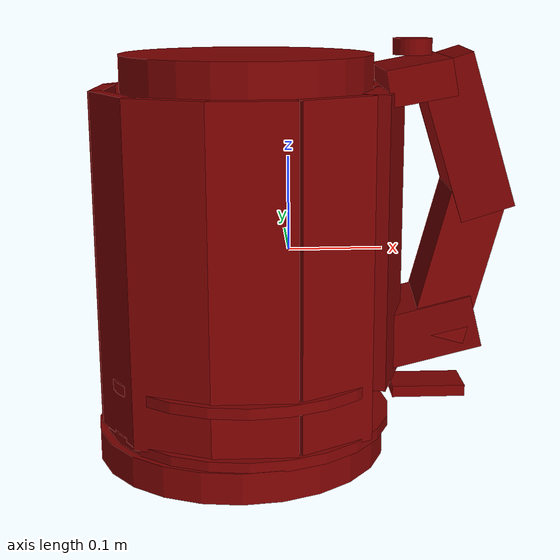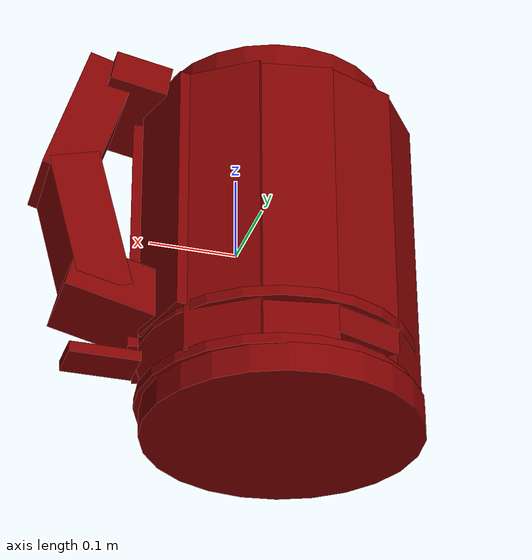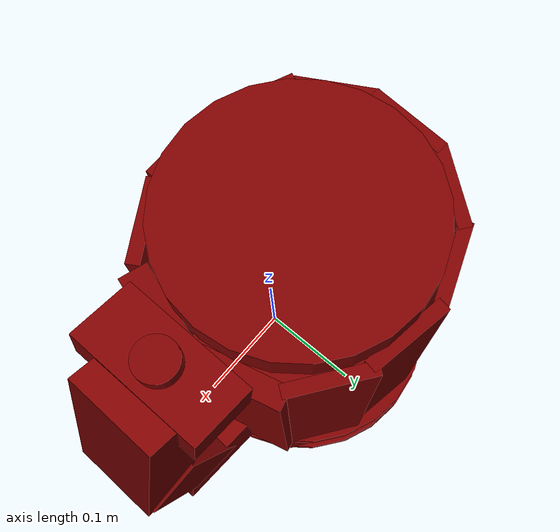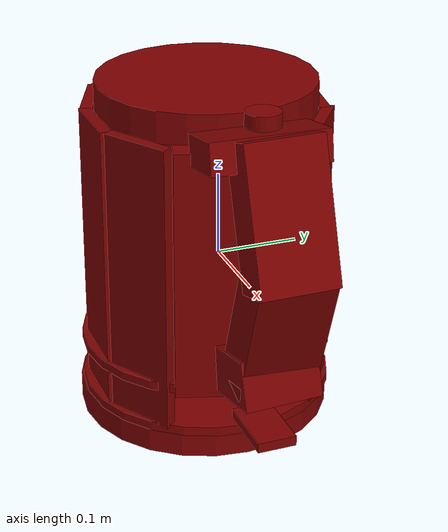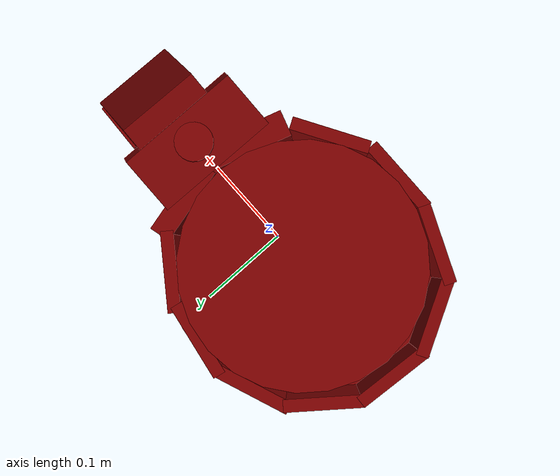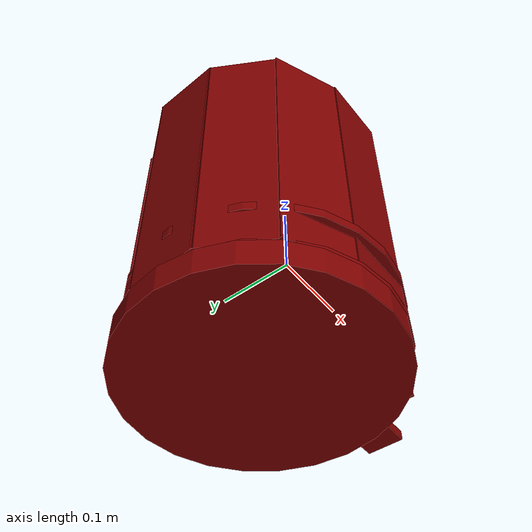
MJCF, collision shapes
<?xml version='1.0' encoding='UTF-8'?>
<mujoco model="model">
  <compiler angle="radian"/>
  <asset>
    <mesh file="visuals/Body001.obj" name="Body001_vis"/>
    <mesh file="visuals/Button001.obj" name="Button001_vis"/>
    <mesh file="visuals/Handle001.obj" name="Handle001_vis"/>
    <mesh file="visuals/Lever001.obj" name="Lever001_vis"/>
    <mesh file="visuals/Lid001.obj" name="Lid001_vis"/>
    <texture file="visuals/T_BC001.png" name="Body001_material" type="2d"/>
    <material name="Body001_material" rgba="1 1 1 1.0" texture="Body001_material" shininess="0.5" specular="0.3103448502657381"/>
    <texture file="visuals/T_BC001.png" name="Handle001_material" type="2d"/>
    <material name="Handle001_material" rgba="1 1 1 1.0" texture="Handle001_material" shininess="0.5" specular="0.3103448502657381"/>
    <texture file="visuals/T_BC001.png" name="Button001_material" type="2d"/>
    <material name="Button001_material" rgba="1 1 1 1.0" texture="Button001_material" shininess="0.5" specular="0.3103448502657381"/>
    <texture file="visuals/T_BC001.png" name="Lever001_material" type="2d"/>
    <material name="Lever001_material" rgba="1 1 1 1.0" texture="Lever001_material" shininess="0.5" specular="0.3103448502657381"/>
    <texture file="visuals/T_BC001.png" name="Lid001_material" type="2d"/>
    <material name="Lid001_material" rgba="1 1 1 1.0" texture="Lid001_material" shininess="0.5" specular="0.3103448502657381"/>
  </asset>
  <default>
    <default class="visual">
      <geom conaffinity="0" contype="0" group="1" type="mesh"/>
    </default>
    <default class="collision">
      <geom group="0" rgba="0.5 0 0 0.5"/>
    </default>
    <default class="spawn">
      <geom group="0" rgba="1 1 1 0.5" contype="0" conaffinity="0"/>
      <site group="0" rgba="1 1 1 0.5"/>
    </default>
    <default class="region">
      <geom group="1" conaffinity="0" contype="0" rgba="0 1 0 0"/>
    </default>
  </default>
  <worldbody>
    <body>
      <body name="object">
        <geom mesh="Body001_vis" type="mesh" solimp="0.998 0.998 0.001" solref="0.001 1" density="100" friction="0.95 0.3 0.1" class="visual" material="Body001_material"/>
        <geom class="collision" type="cylinder" pos="-0.052561 0.000768 -0.204823" size="0.15676099061965942 0.016660800203680992" quat="0.7071068286895752 0.0 -0.0 -0.7071067690849304"/>
        <body name="Handle001">
          <joint axis="0.0 0.0 1.0" pos="0.000510 0.000000 0.000000" limited="true" name="Handle001_joint" range="0.0 0.1" type="slide" damping="1" frictionloss="1" armature=".01" stiffness="0.05"/>
          <geom mesh="Handle001_vis" type="mesh" solimp="0.998 0.998 0.001" solref="0.001 1" density="100" friction="0.95 0.3 0.1" class="visual" material="Handle001_material"/>
          <geom class="collision" type="box" pos="-0.039345 -0.136828 -0.004407" size="0.04330691695213318 0.006925545632839203 0.17692290246486664" quat="1.0 0.0 0.0 0.0"/>
          <geom class="collision" type="box" pos="-0.119406 -0.119470 -0.004407" size="0.006898260675370693 0.04330328479409218 0.17692464590072632" quat="0.5532516241073608 0.0 -0.0 -0.833014190196991"/>
          <geom class="collision" type="box" pos="-0.175124 -0.067450 -0.004407" size="0.006898260675370693 0.04330328851938248 0.17692464590072632" quat="0.25606197118759155 0.0 -0.0 -0.9666603803634644"/>
          <geom class="collision" type="box" pos="-0.192539 0.007254 -0.004407" size="0.006898260675370693 0.04330328851938248 0.17692464590072632" quat="0.029425621032714844 0.0 0.0 0.9995669722557068"/>
          <geom class="collision" type="box" pos="-0.165306 0.079942 -0.004407" size="0.006898260675370693 0.04330328479409218 0.17692464590072632" quat="0.3242883086204529 0.0 0.0 0.9459583163261414"/>
          <geom class="collision" type="box" pos="-0.104450 0.126317 0.004078" size="0.006898260675370693 0.04330328851938248 0.16843943297863007" quat="0.5682376027107239 0.0 0.0 0.8228645324707031"/>
          <geom class="collision" type="box" pos="-0.027552 0.134899 -0.004407" size="0.006898260209709406 0.04330328851938248 0.17692464590072632" quat="0.7656922936439514 0.0 0.0 0.6432070136070251"/>
          <geom class="collision" type="box" pos="0.040961 -0.111843 -0.004407" size="0.006898260675370693 0.04330328479409218 0.17692464590072632" quat="0.8710189461708069 0.0 -0.0 -0.4912493824958801"/>
          <geom class="collision" type="box" pos="0.094592 -0.044185 0.020790" size="0.014288175851106644 0.04330328851938248 0.15172792971134186" quat="0.988697350025177 0.0 -0.0 -0.1499251127243042"/>
          <geom class="collision" type="box" pos="0.092162 0.049505 0.023200" size="0.011540213599801064 0.04330328851938248 0.14931738376617432" quat="0.9926108717918396 0.0 0.0 0.12134098261594772"/>
          <geom class="collision" type="cylinder" pos="-0.045111 0.000729 -0.183416" size="0.15548908710479736 0.005814768839627504" quat="0.7071068286895752 0.0 -0.0 -0.7071067690849304"/>
          <geom class="collision" type="box" pos="0.129323 -0.002326 0.181519" size="0.018407177180051804 0.03315243497490883 0.06951679289340973" quat="0.4461967647075653 -0.457174688577652 -0.5419254899024963 -0.5460920333862305"/>
          <geom class="collision" type="box" pos="0.181912 0.002870 0.124188" size="0.028995146974921227 0.045845359563827515 0.08278486877679825" quat="0.9882217645645142 0.008173669688403606 -0.15205948054790497 -0.015128699131309986"/>
          <geom class="collision" type="box" pos="0.178156 0.003409 -0.009616" size="0.028995145112276077 0.045845359563827515 0.08278487622737885" quat="0.9907916188240051 -0.020459191873669624 0.13274115324020386 -0.01712077483534813"/>
          <geom class="collision" type="box" pos="0.143922 0.000628 -0.081972" size="0.028979692608118057 0.04581586644053459 0.05459216237068176" quat="0.7897830605506897 0.020071588456630707 0.6129554510116577 0.011202432215213776"/>
          <geom class="collision" type="cylinder" pos="-0.045111 0.000729 -0.126746" size="0.15548908710479736 0.005814768839627504" quat="0.7071068286895752 0.0 -0.0 -0.7071067690849304"/>
          <geom class="collision" type="box" pos="0.044936 0.108960 -0.004407" size="0.006898260675370693 0.04330328851938248 0.17692464590072632" quat="0.8912816047668457 0.0 0.0 0.4534502625465393"/>
          <body name="Button001">
            <joint axis="0.0 0.0 -1.0" pos="0.001367 0.128403 0.215305" limited="true" name="Button001_joint" range="0.0 0.005" type="slide" damping="1" frictionloss="1" armature=".01" stiffness="0.8" springref="-0.8"/>
            <geom mesh="Button001_vis" type="mesh" solimp="0.998 0.998 0.001" solref="0.001 1" density="100" friction="0.95 0.3 0.1" class="visual" material="Button001_material"/>
            <geom class="collision" type="cylinder" pos="0.128519 0.000108 0.213878" size="0.020532997325062752 0.008367075584828854" quat="0.7071068286895752 0.0 -0.0 -0.7071067690849304"/>
          </body>
          <body name="Lever001">
            <joint axis="0.0 0.0 -1.0" pos="0.124259 -0.000748 -0.158465" limited="true" name="Lever001_joint" range="0.0 0.012" type="slide" damping="1" frictionloss="1" armature=".01" stiffness="1" springref="-1"/>
            <geom mesh="Lever001_vis" type="mesh" solimp="0.998 0.998 0.001" solref="0.001 1" density="100" friction="0.95 0.3 0.1" class="visual" material="Lever001_material"/>
            <geom class="collision" type="box" pos="0.151882 -0.001577 -0.156365" size="0.03971660137176514 0.023575710132718086 0.006145521532744169" quat="1.0 0.0 0.0 0.0"/>
          </body>
          <body name="Lid001">
            <joint axis="0.0 1.0 0.0" pos="0.091619 -0.000000 0.200000" limited="true" name="Lid001_joint" range="0.0 1.5707963267948966" type="hinge" damping="1" frictionloss="1" armature=".01" stiffness="0.05"/>
            <geom mesh="Lid001_vis" type="mesh" solimp="0.998 0.998 0.001" solref="0.001 1" density="100" friction="0.95 0.3 0.1" class="visual" material="Lid001_material"/>
            <geom class="collision" type="cylinder" pos="-0.042852 0.000729 0.188238" size="0.13205315172672272 0.018849924206733704" quat="0.7071068286895752 0.0 -0.0 -0.7071067690849304"/>
          </body>
        </body>
        <geom class="region" name="reg_main" type="box" pos="5.000000000005e-07 0.0 0.0" size="0.21312750000000003 0.147681 0.221498"/>
      </body>
    </body>
  </worldbody>
  <actuator>
    <motor name="Handle001_joint_actuator" joint="Handle001_joint" gear="180"/>
    <motor name="Button001_joint_actuator" joint="Button001_joint" gear="0.5"/>
    <motor name="Lever001_joint_actuator" joint="Lever001_joint" gear="1.5"/>
    <motor name="Lid001_joint_actuator" joint="Lid001_joint" gear="0.5"/>
  </actuator>
</mujoco>
